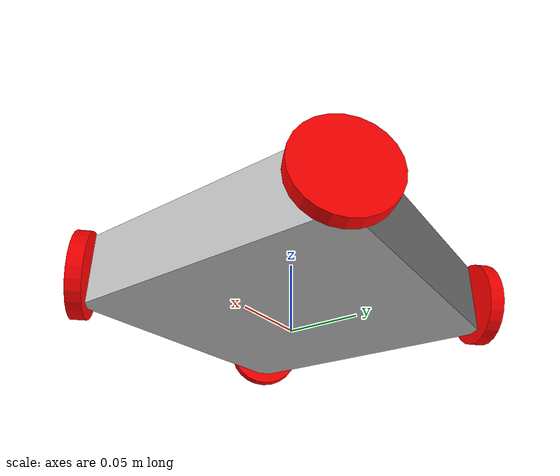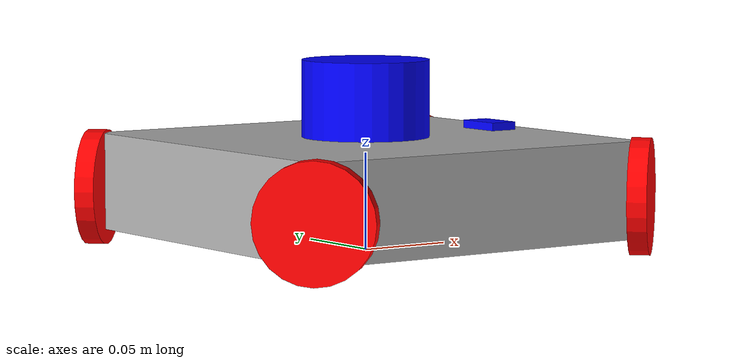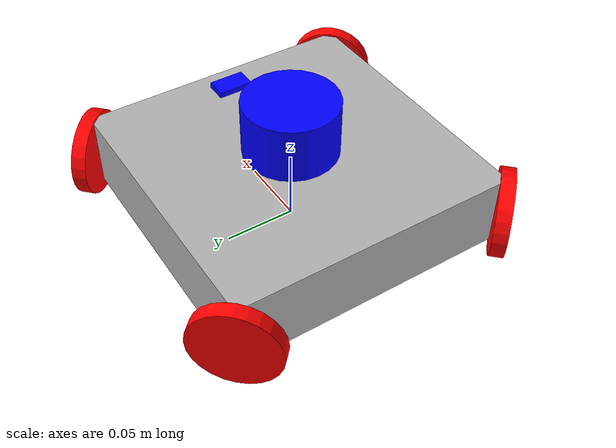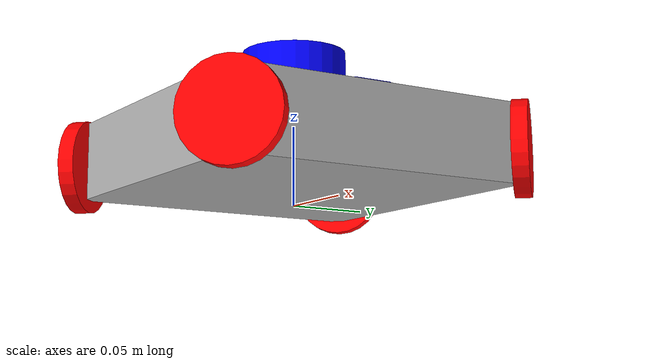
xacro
<?xml version="1.0"?>
<robot name="OmuniRobot" xmlns:xacro="http://ros.org/wiki/xacro">
	<xacro:include filename="$(find Four-wheel_omni)/xacro/lidar.xacro" />
	<xacro:include filename="$(find Four-wheel_omni)/xacro/imu.xacro" />

	<material name="gray">
		<color rgba="0.7 0.7 0.7 2.5"/>
	</material>
	<material name="red">
		<color rgba="1.0 0.0 0.0 2.5"/>
	</material>
	<material name="blue">
		<color rgba="0.0 0.0 1.0 2.5"/>
	</material>

	<xacro:macro name="wheel_macro" params="parent prefix xyz deg　*joint_axis">
		<joint name="${prefix}_joint" type="continuous">
			<origin xyz="${xyz}" rpy="0 0 ${radians(deg)}"/>
			<parent link="${parent}"/>
			<child  link="${prefix}_link"/>
			<insert_block name="joint_axis"/>
		</joint>
		<transmission name="${prefix}_trans">
			<type>transmission_interface/SimpleTransmission</type>
			<joint name="${prefix}_joint">
				<hardwareInterface>hardware_interface/VelocityJointInterface</hardwareInterface>
			</joint>
			<actuator name="${prefix}_motor">
				<hardwareInterface>hardware_interface/VelocityJointInterface</hardwareInterface>
				<mechanismReduction>1</mechanismReduction>
			</actuator>
		</transmission>
		<link name="${prefix}_link">
			<inertial>
				<origin xyz="0 0 0" rpy="0 0 0"/>
				<mass value="0.02"/>
				<inertia ixx="0.0001" ixy="0.0" ixz="0.0" iyy="0.0001" iyz="0.0" izz="0.0001"/>
			</inertial>
			<visual>
				<origin xyz="0 0 0" rpy="${radians(90)} 0 0"/>
				<geometry>
					<cylinder radius="0.03" length="0.01" />
				</geometry>
				<material name="red"/>
			</visual>
			<collision>
				<origin xyz="0 0 0" rpy="${radians(90)} 0 0"/>
				<geometry>
					<cylinder radius="0.03" length="0.01" />
				</geometry>
			</collision>
		</link>
		<gazebo reference="${prefix}_link">
			<material>Gazebo/Red</material>
			<mu1 value="0.0" />
			<mu2 value="1.0" />
			<kp value="5000" />
			<kd value="10" />
			<fdir1>0 0 1</fdir1>
		</gazebo>
	</xacro:macro>

	<link name="base_link"/>

	<joint name="body_joint" type="fixed">
		<parent link="base_link"/>
		<child  link="body_link"/>
		<origin xyz="0 0 0.0033" rpy="0 0 0"/>
	</joint>
	<link name="body_link">
		<inertial>
			<origin xyz="0 0 0.03" rpy="0 0 0" />
			<mass value="1.0"/>
			<inertia ixx="0.001" ixy="0.0" ixz="0.0" iyy="0.001" iyz="0.0" izz="0.001"/>
		</inertial>
		<visual>
			<origin xyz="0 0 0.03" rpy="0 0 0" />
			<geometry>
				<box size="0.20 0.20 0.05" />
			</geometry>
			<material name="gray" />
		</visual>
		<collision>
			<origin xyz="0 0 0.03" rpy="0 0 0" />
			<geometry>
				<box size="0.20 0.20 0.04" />
			</geometry>
		</collision>
	</link>
	<gazebo reference="body_link">
		<material>Gazebo/Gray</material>
		<mu1>0.05</mu1>
		<mu2>0.05</mu2>
	</gazebo>

	<xacro:wheel_macro prefix="wheel0"  parent="base_link" xyz="-0.1 0.1 0.03" deg="45">
		<axis xyz="0 1 0"/>
	</xacro:wheel_macro>
	<xacro:wheel_macro prefix="wheel1" parent="base_link" xyz="-0.1 -0.1 0.03" deg="135">
		<axis xyz="0 1 0"/>
	</xacro:wheel_macro>
	<xacro:wheel_macro prefix="wheel2" parent="base_link" xyz="0.1 -0.1 0.03" deg="225">
		<axis xyz="0 1 0"/>
	</xacro:wheel_macro>
	<xacro:wheel_macro prefix="wheel3" parent="base_link" xyz="0.1 0.1 0.03" deg="-45">
		<axis xyz="0 1 0"/>
	</xacro:wheel_macro>

	<xacro:laser_macro prefix="laser" parent="base_link" xyz="0 0 0.078"/>
	<xacro:imu_macro prefix="imu" parent="base_link" xyz="0.08 0 0.06"/>

	<gazebo>
		<plugin name="gazebo_ros_control" filename="libgazebo_ros_control.so">
			<robotNamespace>/OmuniRobot</robotNamespace>
			<legacyModeNS>true</legacyModeNS>
		</plugin>
	</gazebo>
	<gazebo>
		<plugin name="ground_truth" filename="libgazebo_ros_p3d.so">
			<frameName>world</frameName>
			<bodyName>base_link</bodyName>
			<topicName>/tracker</topicName>
			<updateRate>10.0</updateRate>
		</plugin>
	</gazebo>
</robot>

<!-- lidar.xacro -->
<robot name="OmuniRobot" xmlns:xacro="http://ros.org/wiki/xacro">
	<xacro:macro name="laser_macro" params="parent prefix xyz">
		<joint name="${prefix}_joint" type="fixed">
		<parent link="${parent}"/>
		<child  link="${prefix}_link"/>
		<origin xyz="${xyz}" rpy="0 0 0"/>
		</joint>
		<link name="${prefix}_link">
		<visual>
			<origin xyz="0 0 0" rpy="0 0 0" />
			<geometry>
			<cylinder radius="0.0329" length="0.04" />
			</geometry>
			<material name="blue" />
		</visual>
		<collision>
			<origin xyz="0 0 0" rpy="0 0 0"/>
			<geometry>
			<cylinder radius="0.0329" length="0.04" />
			</geometry>
		</collision>
		</link>
		<gazebo reference="${prefix}_link">
		<material>Gazebo/Blue</material>
		<sensor type="ray" name="${prefix}">
			<pose>0 0 0 0 0 0</pose>
			<visualize>false</visualize>
			<update_rate>10</update_rate>
			<ray>
			<scan>
				<horizontal>
				<samples>400</samples>
				<resolution>1</resolution>
				<min_angle>${radians(-180)}</min_angle>
				<max_angle>${radians(180)}</max_angle>
				</horizontal>
			</scan>
			<range>
				<min>0.10</min>
				<max>20.0</max>
				<resolution>0.01</resolution>
			</range>
			<noise>
				<type>gaussian</type>
				<mean>0.0</mean>
				<stddev>0.01</stddev>
			</noise>
			</ray>
			<plugin name="gazebo_ros_lidar_controller" filename="libgazebo_ros_laser.so">
			<topicName>/${prefix}_link/scan</topicName>
			<frameName>${prefix}_link</frameName>
			</plugin>
		</sensor>
		</gazebo>
	</xacro:macro>
</robot>

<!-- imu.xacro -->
<robot name="OmuniRobot" xmlns:xacro="http://ros.org/wiki/xacro">
  <xacro:macro name="imu_macro" params="parent prefix xyz">
    <joint name="imu_joint" type="fixed">
      <parent link="${parent}"/>
      <child  link="${prefix}_link"/>
      <origin xyz="${xyz}" rpy="0 0 0"/>
    </joint>
    <link name="${prefix}_link">
      <visual>
        <origin xyz="0 0 0" rpy="0 0 0" />
        <geometry>
          <box size="0.015 0.025 0.005" />
        </geometry>
        <material name="blue" />
      </visual>
    </link>
    <gazebo reference="${prefix}_link">
      <gravity>true</gravity>
      <sensor name="imu_sensor" type="imu">
        <always_on>true</always_on>
        <update_rate>100</update_rate>
        <visualize>true</visualize>
        <topic>data</topic>
        <plugin filename="libgazebo_ros_imu_sensor.so" name="imu_plugin">
          <topicName>${prefix}/data</topicName>
          <bodyName>${prefix}_link</bodyName>
          <updateRateHZ>10.0</updateRateHZ>
          <gaussianNoise>0.0</gaussianNoise>
          <xyzOffset>0 0 0</xyzOffset>
          <rpyOffset>0 0 0</rpyOffset>
          <frameName>${prefix}_link</frameName>
        </plugin>
        <pose>0 0 0 0 0 0</pose>
      </sensor>
    </gazebo>
  </xacro:macro>
</robot>
